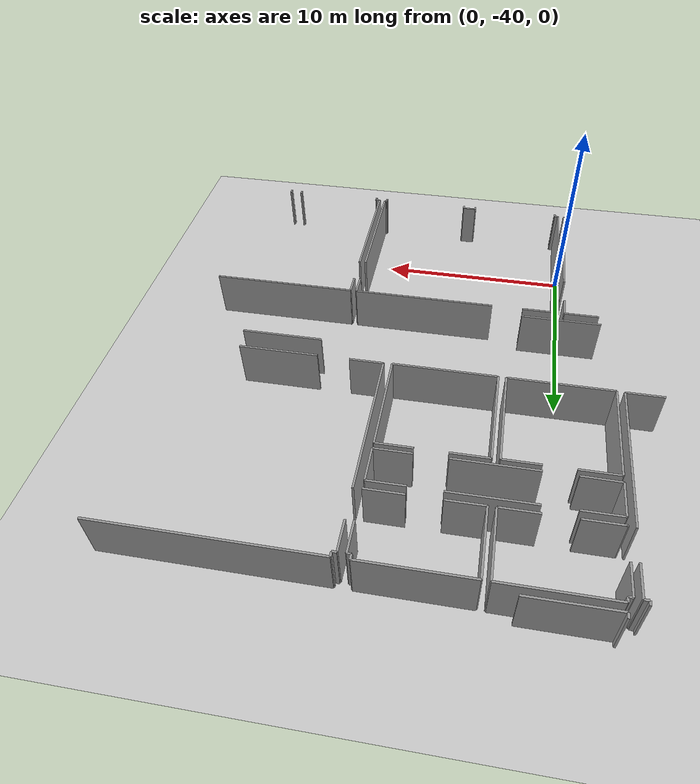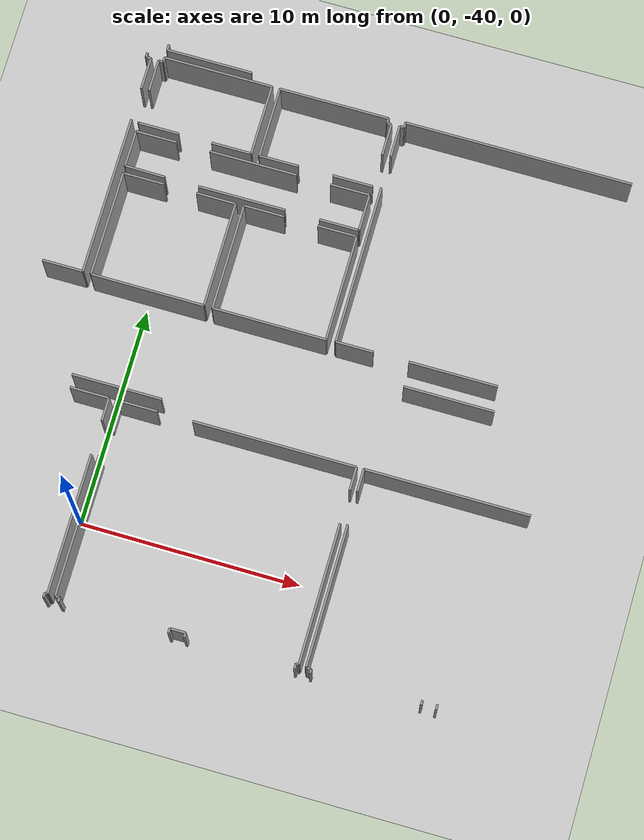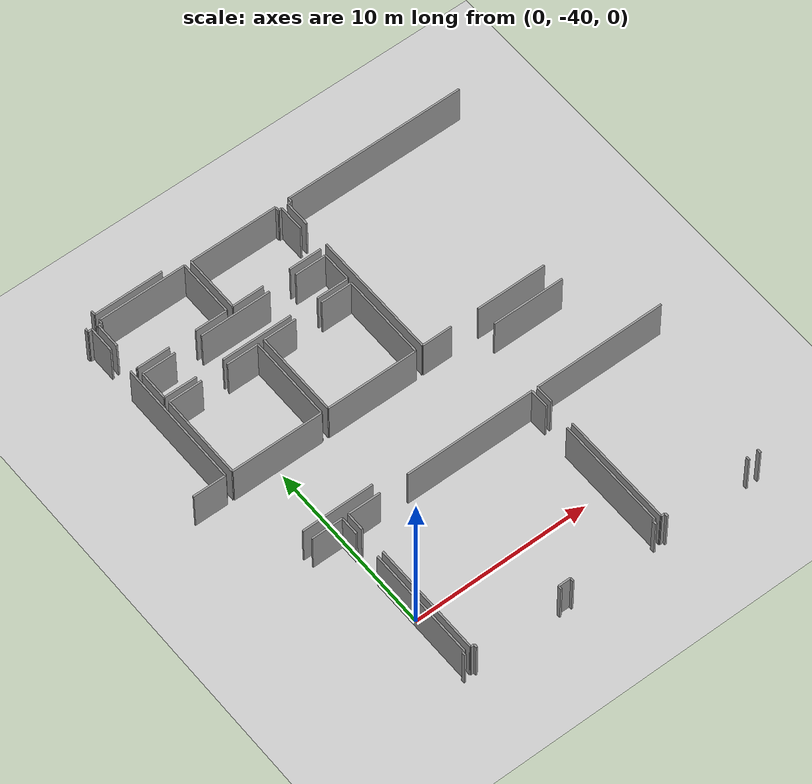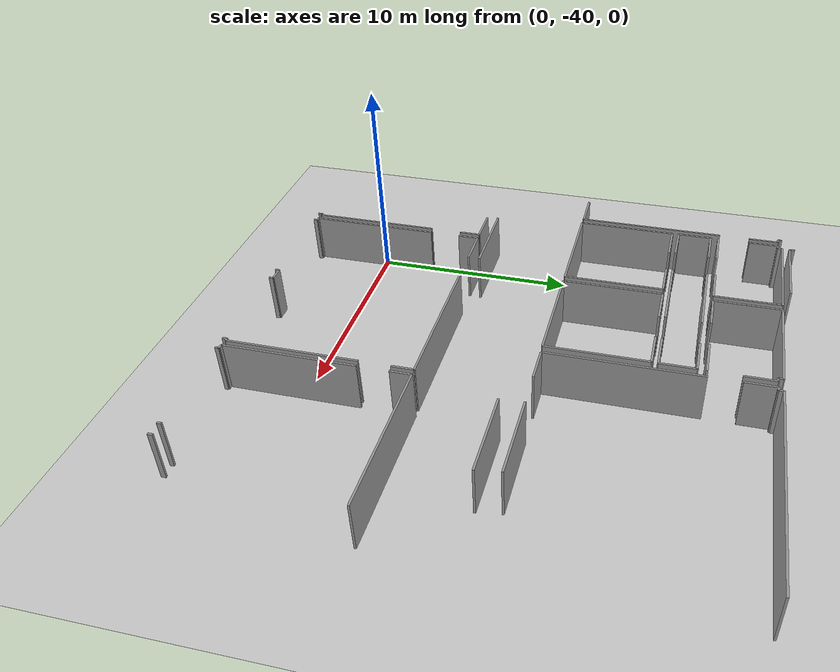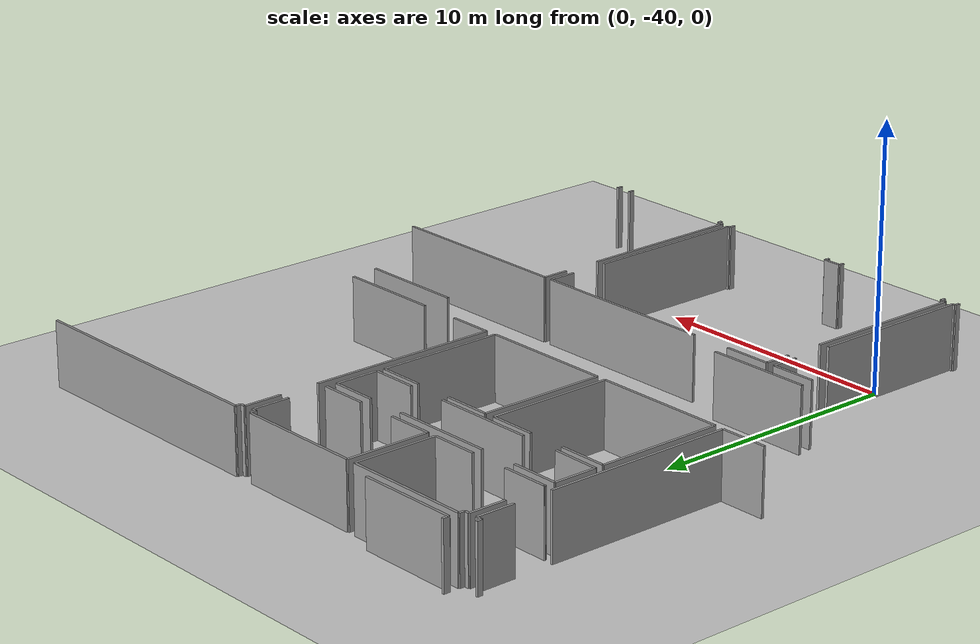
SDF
<sdf version="1.6">
 <world name="default">
  <model name="ground_plane">
   <static>1</static>
   <link name="link">
    <collision name="collision">
     <geometry><plane><normal>0 0 1</normal><size>100 100</size></plane></geometry>
     <surface><friction><ode><mu>100</mu><mu2>50</mu2></ode></friction></surface>
    </collision>
    <visual name="visual">
     <cast_shadows>0</cast_shadows>
     <geometry><plane><normal>0 0 1</normal><size>100 100</size></plane></geometry>
     <material>
      <script><uri>file://media/materials/scripts/gazebo.material</uri><name>Gazebo/Grey</name></script>
     </material>
    </visual>
   </link>
  </model>
  <model name="50015847">
   <static>1</static>
   <link name="Wall_1016">
    <collision name="Wall_1016_Collision">
     <geometry><box><size>3.9477296995 0.1 2.5</size></box></geometry>
     <pose>1.97386484975 0 1.25 0 0 0</pose>
    </collision>
    <visual name="Wall_1016_Visual">
     <pose>1.97386484975 0 1.25 0 0 0</pose>
     <geometry><box><size>3.9477296995 0.1 2.5</size></box></geometry>
     <material>
      <script><uri>file://media/materials/scripts/gazebo.material</uri><name>Gazebo/Grey</name></script>
      <ambient>1 1 1 1</ambient>
     </material>
    </visual>
    <pose>133.934509585 -62.5458890527 0 0 0 3.14159265359</pose>
   </link>
   <link name="Wall_1017">
    <collision name="Wall_1017_Collision">
     <geometry><box><size>0.25753800783 0.1 2.5</size></box></geometry>
     <pose>0.128769003915 0 1.25 0 0 0</pose>
    </collision>
    <visual name="Wall_1017_Visual">
     <pose>0.128769003915 0 1.25 0 0 0</pose>
     <geometry><box><size>0.25753800783 0.1 2.5</size></box></geometry>
     <material>
      <script><uri>file://media/materials/scripts/gazebo.material</uri><name>Gazebo/Grey</name></script>
      <ambient>1 1 1 1</ambient>
     </material>
    </visual>
    <pose>129.986779885 -62.5458890527 0 0 0 1.57079632679</pose>
   </link>
   <link name="Wall_1369">
    <collision name="Wall_1369_Collision">
     <geometry><box><size>1.77225809732 0.1 2.5</size></box></geometry>
     <pose>0.88612904866 0 1.25 0 0 0</pose>
    </collision>
    <visual name="Wall_1369_Visual">
     <pose>0.88612904866 0 1.25 0 0 0</pose>
     <geometry><box><size>1.77225809732 0.1 2.5</size></box></geometry>
     <material>
      <script><uri>file://media/materials/scripts/gazebo.material</uri><name>Gazebo/Grey</name></script>
      <ambient>1 1 1 1</ambient>
     </material>
    </visual>
    <pose>130.425586007 -78.6502771139 0 0 0 0.0</pose>
   </link>
   <link name="Wall_1370">
    <collision name="Wall_1370_Collision">
     <geometry><box><size>1.05506686327 0.1 2.5</size></box></geometry>
     <pose>0.527533431637 0 1.25 0 0 0</pose>
    </collision>
    <visual name="Wall_1370_Visual">
     <pose>0.527533431637 0 1.25 0 0 0</pose>
     <geometry><box><size>1.05506686327 0.1 2.5</size></box></geometry>
     <material>
      <script><uri>file://media/materials/scripts/gazebo.material</uri><name>Gazebo/Grey</name></script>
      <ambient>1 1 1 1</ambient>
     </material>
    </visual>
    <pose>132.197844104 -78.6502771139 0 0 0 -1.57079632679</pose>
   </link>
   <link name="Wall_1371">
    <collision name="Wall_1371_Collision">
     <geometry><box><size>6.36624802969 0.1 2.5</size></box></geometry>
     <pose>3.18312401485 0 1.25 0 0 0</pose>
    </collision>
    <visual name="Wall_1371_Visual">
     <pose>3.18312401485 0 1.25 0 0 0</pose>
     <geometry><box><size>6.36624802969 0.1 2.5</size></box></geometry>
     <material>
      <script><uri>file://media/materials/scripts/gazebo.material</uri><name>Gazebo/Grey</name></script>
      <ambient>1 1 1 1</ambient>
     </material>
    </visual>
    <pose>132.197844104 -81.2643006051 0 0 0 -1.57079632679</pose>
   </link>
   <link name="Wall_1372">
    <collision name="Wall_1372_Collision">
     <geometry><box><size>0.119235267199 0.1 2.5</size></box></geometry>
     <pose>0.0596176335994 0 1.25 0 0 0</pose>
    </collision>
    <visual name="Wall_1372_Visual">
     <pose>0.0596176335994 0 1.25 0 0 0</pose>
     <geometry><box><size>0.119235267199 0.1 2.5</size></box></geometry>
     <material>
      <script><uri>file://media/materials/scripts/gazebo.material</uri><name>Gazebo/Grey</name></script>
      <ambient>1 1 1 1</ambient>
     </material>
    </visual>
    <pose>132.197844104 -87.6305486348 0 0 0 3.14159265359</pose>
   </link>
   <link name="Wall_1373">
    <collision name="Wall_1373_Collision">
     <geometry><box><size>0.202369451365 0.1 2.5</size></box></geometry>
     <pose>0.101184725683 0 1.25 0 0 0</pose>
    </collision>
    <visual name="Wall_1373_Visual">
     <pose>0.101184725683 0 1.25 0 0 0</pose>
     <geometry><box><size>0.202369451365 0.1 2.5</size></box></geometry>
     <material>
      <script><uri>file://media/materials/scripts/gazebo.material</uri><name>Gazebo/Grey</name></script>
      <ambient>1 1 1 1</ambient>
     </material>
    </visual>
    <pose>132.078608837 -87.6305486348 0 0 0 -1.57079632679</pose>
   </link>
   <link name="Wall_1380">
    <collision name="Wall_1380_Collision">
     <geometry><box><size>6.40006101591 0.1 2.5</size></box></geometry>
     <pose>3.20003050796 0 1.25 0 0 0</pose>
    </collision>
    <visual name="Wall_1380_Visual">
     <pose>3.20003050796 0 1.25 0 0 0</pose>
     <geometry><box><size>6.40006101591 0.1 2.5</size></box></geometry>
     <material>
      <script><uri>file://media/materials/scripts/gazebo.material</uri><name>Gazebo/Grey</name></script>
      <ambient>1 1 1 1</ambient>
     </material>
    </visual>
    <pose>132.541312859 -87.6140234911 0 0 0 1.57079632679</pose>
   </link>
   <link name="Wall_1381">
    <collision name="Wall_1381_Collision">
     <geometry><box><size>1.04184674836 0.1 2.5</size></box></geometry>
     <pose>0.52092337418 0 1.25 0 0 0</pose>
    </collision>
    <visual name="Wall_1381_Visual">
     <pose>0.52092337418 0 1.25 0 0 0</pose>
     <geometry><box><size>1.04184674836 0.1 2.5</size></box></geometry>
     <material>
      <script><uri>file://media/materials/scripts/gazebo.material</uri><name>Gazebo/Grey</name></script>
      <ambient>1 1 1 1</ambient>
     </material>
    </visual>
    <pose>132.541312859 -79.6872934357 0 0 0 1.57079632679</pose>
   </link>
   <link name="Wall_1382">
    <collision name="Wall_1382_Collision">
     <geometry><box><size>1.85081608786 0.1 2.5</size></box></geometry>
     <pose>0.925408043931 0 1.25 0 0 0</pose>
    </collision>
    <visual name="Wall_1382_Visual">
     <pose>0.925408043931 0 1.25 0 0 0</pose>
     <geometry><box><size>1.85081608786 0.1 2.5</size></box></geometry>
     <material>
      <script><uri>file://media/materials/scripts/gazebo.material</uri><name>Gazebo/Grey</name></script>
      <ambient>1 1 1 1</ambient>
     </material>
    </visual>
    <pose>132.541312859 -78.6454466873 0 0 0 0.0</pose>
   </link>
   <link name="Wall_1383">
    <collision name="Wall_1383_Collision">
     <geometry><box><size>7.39767122591 0.1 2.5</size></box></geometry>
     <pose>3.69883561296 0 1.25 0 0 0</pose>
    </collision>
    <visual name="Wall_1383_Visual">
     <pose>3.69883561296 0 1.25 0 0 0</pose>
     <geometry><box><size>7.39767122591 0.1 2.5</size></box></geometry>
     <material>
      <script><uri>file://media/materials/scripts/gazebo.material</uri><name>Gazebo/Grey</name></script>
      <ambient>1 1 1 1</ambient>
     </material>
    </visual>
    <pose>136.007271063 -78.6454466873 0 0 0 0.0</pose>
   </link>
   <link name="Wall_1384">
    <collision name="Wall_1384_Collision">
     <geometry><box><size>1.07032084202 0.1 2.5</size></box></geometry>
     <pose>0.53516042101 0 1.25 0 0 0</pose>
    </collision>
    <visual name="Wall_1384_Visual">
     <pose>0.53516042101 0 1.25 0 0 0</pose>
     <geometry><box><size>1.07032084202 0.1 2.5</size></box></geometry>
     <material>
      <script><uri>file://media/materials/scripts/gazebo.material</uri><name>Gazebo/Grey</name></script>
      <ambient>1 1 1 1</ambient>
     </material>
    </visual>
    <pose>143.404942289 -78.6454466873 0 0 0 -1.57079632679</pose>
   </link>
   <link name="Wall_1385">
    <collision name="Wall_1385_Collision">
     <geometry><box><size>6.36421416586 0.1 2.5</size></box></geometry>
     <pose>3.18210708293 0 1.25 0 0 0</pose>
    </collision>
    <visual name="Wall_1385_Visual">
     <pose>3.18210708293 0 1.25 0 0 0</pose>
     <geometry><box><size>6.36421416586 0.1 2.5</size></box></geometry>
     <material>
      <script><uri>file://media/materials/scripts/gazebo.material</uri><name>Gazebo/Grey</name></script>
      <ambient>1 1 1 1</ambient>
     </material>
    </visual>
    <pose>143.404942289 -81.2376061423 0 0 0 -1.57079632679</pose>
   </link>
   <link name="Wall_1386">
    <collision name="Wall_1386_Collision">
     <geometry><box><size>0.125845324656 0.1 2.5</size></box></geometry>
     <pose>0.0629226623278 0 1.25 0 0 0</pose>
    </collision>
    <visual name="Wall_1386_Visual">
     <pose>0.0629226623278 0 1.25 0 0 0</pose>
     <geometry><box><size>0.125845324656 0.1 2.5</size></box></geometry>
     <material>
      <script><uri>file://media/materials/scripts/gazebo.material</uri><name>Gazebo/Grey</name></script>
      <ambient>1 1 1 1</ambient>
     </material>
    </visual>
    <pose>143.404942289 -87.6018203081 0 0 0 3.14159265359</pose>
   </link>
   <link name="Wall_1387">
    <collision name="Wall_1387_Collision">
     <geometry><box><size>0.23491127269 0.1 2.5</size></box></geometry>
     <pose>0.117455636345 0 1.25 0 0 0</pose>
    </collision>
    <visual name="Wall_1387_Visual">
     <pose>0.117455636345 0 1.25 0 0 0</pose>
     <geometry><box><size>0.23491127269 0.1 2.5</size></box></geometry>
     <material>
      <script><uri>file://media/materials/scripts/gazebo.material</uri><name>Gazebo/Grey</name></script>
      <ambient>1 1 1 1</ambient>
     </material>
    </visual>
    <pose>143.279096964 -87.6018203081 0 0 0 -1.57079632679</pose>
   </link>
   <link name="Wall_1388">
    <collision name="Wall_1388_Collision">
     <geometry><box><size>0.207454110947 0.1 2.5</size></box></geometry>
     <pose>0.103727055474 0 1.25 0 0 0</pose>
    </collision>
    <visual name="Wall_1388_Visual">
     <pose>0.103727055474 0 1.25 0 0 0</pose>
     <geometry><box><size>0.207454110947 0.1 2.5</size></box></geometry>
     <material>
      <script><uri>file://media/materials/scripts/gazebo.material</uri><name>Gazebo/Grey</name></script>
      <ambient>1 1 1 1</ambient>
     </material>
    </visual>
    <pose>138.373925866 -87.8367315808 0 0 0 1.57079632679</pose>
   </link>
   <link name="Wall_1389">
    <collision name="Wall_1389_Collision">
     <geometry><box><size>0.703208420196 0.1 2.5</size></box></geometry>
     <pose>0.351604210098 0 1.25 0 0 0</pose>
    </collision>
    <visual name="Wall_1389_Visual">
     <pose>0.351604210098 0 1.25 0 0 0</pose>
     <geometry><box><size>0.703208420196 0.1 2.5</size></box></geometry>
     <material>
      <script><uri>file://media/materials/scripts/gazebo.material</uri><name>Gazebo/Grey</name></script>
      <ambient>1 1 1 1</ambient>
     </material>
    </visual>
    <pose>138.373925866 -87.6292774699 0 0 0 3.14159265359</pose>
   </link>
   <link name="Wall_1390">
    <collision name="Wall_1390_Collision">
     <geometry><box><size>0.208979508822 0.1 2.5</size></box></geometry>
     <pose>0.104489754411 0 1.25 0 0 0</pose>
    </collision>
    <visual name="Wall_1390_Visual">
     <pose>0.104489754411 0 1.25 0 0 0</pose>
     <geometry><box><size>0.208979508822 0.1 2.5</size></box></geometry>
     <material>
      <script><uri>file://media/materials/scripts/gazebo.material</uri><name>Gazebo/Grey</name></script>
      <ambient>1 1 1 1</ambient>
     </material>
    </visual>
    <pose>137.670717445 -87.6292774699 0 0 0 -1.57079632679</pose>
   </link>
   <link name="Wall_1391">
    <collision name="Wall_1391_Collision">
     <geometry><box><size>0.199572888595 0.1 2.5</size></box></geometry>
     <pose>0.0997864442975 0 1.25 0 0 0</pose>
    </collision>
    <visual name="Wall_1391_Visual">
     <pose>0.0997864442975 0 1.25 0 0 0</pose>
     <geometry><box><size>0.199572888595 0.1 2.5</size></box></geometry>
     <material>
      <script><uri>file://media/materials/scripts/gazebo.material</uri><name>Gazebo/Grey</name></script>
      <ambient>1 1 1 1</ambient>
     </material>
    </visual>
    <pose>132.743173845 -87.8382569787 0 0 0 1.57079632679</pose>
   </link>
   <link name="Wall_1392">
    <collision name="Wall_1392_Collision">
     <geometry><box><size>0.204403315198 0.1 2.5</size></box></geometry>
     <pose>0.102201657599 0 1.25 0 0 0</pose>
    </collision>
    <visual name="Wall_1392_Visual">
     <pose>0.102201657599 0 1.25 0 0 0</pose>
     <geometry><box><size>0.204403315198 0.1 2.5</size></box></geometry>
     <material>
      <script><uri>file://media/materials/scripts/gazebo.material</uri><name>Gazebo/Grey</name></script>
      <ambient>1 1 1 1</ambient>
     </material>
    </visual>
    <pose>132.743173845 -87.6386840901 0 0 0 3.14159265359</pose>
   </link>
   <link name="Wall_1393">
    <collision name="Wall_1393_Collision">
     <geometry><box><size>0.0247913005401 0.1 2.5</size></box></geometry>
     <pose>0.01239565027 0 1.25 0 0 0</pose>
    </collision>
    <visual name="Wall_1393_Visual">
     <pose>0.01239565027 0 1.25 0 0 0</pose>
     <geometry><box><size>0.0247913005401 0.1 2.5</size></box></geometry>
     <material>
      <script><uri>file://media/materials/scripts/gazebo.material</uri><name>Gazebo/Grey</name></script>
      <ambient>1 1 1 1</ambient>
     </material>
    </visual>
    <pose>132.538770529 -87.6386840901 0 0 0 1.46806645938</pose>
   </link>
   <link name="Wall_1394">
    <collision name="Wall_1394_Collision">
     <geometry><box><size>6.42116235318 0.1 2.5</size></box></geometry>
     <pose>3.21058117659 0 1.25 0 0 0</pose>
    </collision>
    <visual name="Wall_1394_Visual">
     <pose>3.21058117659 0 1.25 0 0 0</pose>
     <geometry><box><size>6.42116235318 0.1 2.5</size></box></geometry>
     <material>
      <script><uri>file://media/materials/scripts/gazebo.material</uri><name>Gazebo/Grey</name></script>
      <ambient>1 1 1 1</ambient>
     </material>
    </visual>
    <pose>143.735699395 -87.6147861901 0 0 0 1.57079632679</pose>
   </link>
   <link name="Wall_1395">
    <collision name="Wall_1395_Collision">
     <geometry><box><size>1.03066049728 0.1 2.5</size></box></geometry>
     <pose>0.51533024864 0 1.25 0 0 0</pose>
    </collision>
    <visual name="Wall_1395_Visual">
     <pose>0.51533024864 0 1.25 0 0 0</pose>
     <geometry><box><size>1.03066049728 0.1 2.5</size></box></geometry>
     <material>
      <script><uri>file://media/materials/scripts/gazebo.material</uri><name>Gazebo/Grey</name></script>
      <ambient>1 1 1 1</ambient>
     </material>
    </visual>
    <pose>143.735699395 -79.6748360197 0 0 0 1.57079632679</pose>
   </link>
   <link name="Wall_1396">
    <collision name="Wall_1396_Collision">
     <geometry><box><size>7.49377129201 0.1 2.5</size></box></geometry>
     <pose>3.74688564601 0 1.25 0 0 0</pose>
    </collision>
    <visual name="Wall_1396_Visual">
     <pose>3.74688564601 0 1.25 0 0 0</pose>
     <geometry><box><size>7.49377129201 0.1 2.5</size></box></geometry>
     <material>
      <script><uri>file://media/materials/scripts/gazebo.material</uri><name>Gazebo/Grey</name></script>
      <ambient>1 1 1 1</ambient>
     </material>
    </visual>
    <pose>143.735699395 -78.6441755224 0 0 0 0.0</pose>
   </link>
   <link name="Wall_1400">
    <collision name="Wall_1400_Collision">
     <geometry><box><size>0.237453602481 0.1 2.5</size></box></geometry>
     <pose>0.118726801241 0 1.25 0 0 0</pose>
    </collision>
    <visual name="Wall_1400_Visual">
     <pose>0.118726801241 0 1.25 0 0 0</pose>
     <geometry><box><size>0.237453602481 0.1 2.5</size></box></geometry>
     <material>
      <script><uri>file://media/materials/scripts/gazebo.material</uri><name>Gazebo/Grey</name></script>
      <ambient>1 1 1 1</ambient>
     </material>
    </visual>
    <pose>149.54085524 -87.8619006458 0 0 0 1.57079632679</pose>
   </link>
   <link name="Wall_1402">
    <collision name="Wall_1402_Collision">
     <geometry><box><size>0.213809935425 0.1 2.5</size></box></geometry>
     <pose>0.106904967712 0 1.25 0 0 0</pose>
    </collision>
    <visual name="Wall_1402_Visual">
     <pose>0.106904967712 0 1.25 0 0 0</pose>
     <geometry><box><size>0.213809935425 0.1 2.5</size></box></geometry>
     <material>
      <script><uri>file://media/materials/scripts/gazebo.material</uri><name>Gazebo/Grey</name></script>
      <ambient>1 1 1 1</ambient>
     </material>
    </visual>
    <pose>148.88035796 -87.6244470433 0 0 0 -1.57079632679</pose>
   </link>
   <link name="Wall_1403">
    <collision name="Wall_1403_Collision">
     <geometry><box><size>0.189912035389 0.1 2.5</size></box></geometry>
     <pose>0.0949560176946 0 1.25 0 0 0</pose>
    </collision>
    <visual name="Wall_1403_Visual">
     <pose>0.0949560176946 0 1.25 0 0 0</pose>
     <geometry><box><size>0.189912035389 0.1 2.5</size></box></geometry>
     <material>
      <script><uri>file://media/materials/scripts/gazebo.material</uri><name>Gazebo/Grey</name></script>
      <ambient>1 1 1 1</ambient>
     </material>
    </visual>
    <pose>143.962220979 -87.8382569787 0 0 0 1.57079632679</pose>
   </link>
   <link name="Wall_1404">
    <collision name="Wall_1404_Collision">
     <geometry><box><size>0.223470788631 0.1 2.5</size></box></geometry>
     <pose>0.111735394315 0 1.25 0 0 0</pose>
    </collision>
    <visual name="Wall_1404_Visual">
     <pose>0.111735394315 0 1.25 0 0 0</pose>
     <geometry><box><size>0.223470788631 0.1 2.5</size></box></geometry>
     <material>
      <script><uri>file://media/materials/scripts/gazebo.material</uri><name>Gazebo/Grey</name></script>
      <ambient>1 1 1 1</ambient>
     </material>
    </visual>
    <pose>143.962220979 -87.6483449433 0 0 0 3.14159265359</pose>
   </link>
   <link name="Wall_1405">
    <collision name="Wall_1405_Collision">
     <geometry><box><size>0.0336971404399 0.1 2.5</size></box></geometry>
     <pose>0.0168485702199 0 1.25 0 0 0</pose>
    </collision>
    <visual name="Wall_1405_Visual">
     <pose>0.0168485702199 0 1.25 0 0 0</pose>
     <geometry><box><size>0.0336971404399 0.1 2.5</size></box></geometry>
     <material>
      <script><uri>file://media/materials/scripts/gazebo.material</uri><name>Gazebo/Grey</name></script>
      <ambient>1 1 1 1</ambient>
     </material>
    </visual>
    <pose>143.738750191 -87.6483449433 0 0 0 1.661456214</pose>
   </link>
   <link name="Wall_1583">
    <collision name="Wall_1583_Collision">
     <geometry><box><size>7.33868917476 0.1 2.5</size></box></geometry>
     <pose>3.66934458738 0 1.25 0 0 0</pose>
    </collision>
    <visual name="Wall_1583_Visual">
     <pose>3.66934458738 0 1.25 0 0 0</pose>
     <geometry><box><size>7.33868917476 0.1 2.5</size></box></geometry>
     <material>
      <script><uri>file://media/materials/scripts/gazebo.material</uri><name>Gazebo/Grey</name></script>
      <ambient>1 1 1 1</ambient>
     </material>
    </visual>
    <pose>140.990491687 -73.4748563584 0 0 0 1.57079632679</pose>
   </link>
   <link name="Wall_1584">
    <collision name="Wall_1584_Collision">
     <geometry><box><size>1.46641582346 0.1 2.5</size></box></geometry>
     <pose>0.73320791173 0 1.25 0 0 0</pose>
    </collision>
    <visual name="Wall_1584_Visual">
     <pose>0.73320791173 0 1.25 0 0 0</pose>
     <geometry><box><size>1.46641582346 0.1 2.5</size></box></geometry>
     <material>
      <script><uri>file://media/materials/scripts/gazebo.material</uri><name>Gazebo/Grey</name></script>
      <ambient>1 1 1 1</ambient>
     </material>
    </visual>
    <pose>140.990491687 -64.6153455026 0 0 0 1.57079632679</pose>
   </link>
   <link name="Wall_1585">
    <collision name="Wall_1585_Collision">
     <geometry><box><size>0.211776071592 0.1 2.5</size></box></geometry>
     <pose>0.105888035796 0 1.25 0 0 0</pose>
    </collision>
    <visual name="Wall_1585_Visual">
     <pose>0.105888035796 0 1.25 0 0 0</pose>
     <geometry><box><size>0.211776071592 0.1 2.5</size></box></geometry>
     <material>
      <script><uri>file://media/materials/scripts/gazebo.material</uri><name>Gazebo/Grey</name></script>
      <ambient>1 1 1 1</ambient>
     </material>
    </visual>
    <pose>140.990491687 -63.1489296792 0 0 0 0.0</pose>
   </link>
   <link name="Wall_1586">
    <collision name="Wall_1586_Collision">
     <geometry><box><size>0.229826613108 0.1 2.5</size></box></geometry>
     <pose>0.114913306554 0 1.25 0 0 0</pose>
    </collision>
    <visual name="Wall_1586_Visual">
     <pose>0.114913306554 0 1.25 0 0 0</pose>
     <geometry><box><size>0.229826613108 0.1 2.5</size></box></geometry>
     <material>
      <script><uri>file://media/materials/scripts/gazebo.material</uri><name>Gazebo/Grey</name></script>
      <ambient>1 1 1 1</ambient>
     </material>
    </visual>
    <pose>141.202267758 -63.1489296792 0 0 0 1.57079632679</pose>
   </link>
   <link name="Wall_1587">
    <collision name="Wall_1587_Collision">
     <geometry><box><size>10.4327045304 0.1 2.5</size></box></geometry>
     <pose>5.21635226522 0 1.25 0 0 0</pose>
    </collision>
    <visual name="Wall_1587_Visual">
     <pose>5.21635226522 0 1.25 0 0 0</pose>
     <geometry><box><size>10.4327045304 0.1 2.5</size></box></geometry>
     <material>
      <script><uri>file://media/materials/scripts/gazebo.material</uri><name>Gazebo/Grey</name></script>
      <ambient>1 1 1 1</ambient>
     </material>
    </visual>
    <pose>141.202267758 -62.919103066 0 0 0 0.0</pose>
   </link>
   <link name="Wall_1592">
    <collision name="Wall_1592_Collision">
     <geometry><box><size>4.02247419535 0.1 2.5</size></box></geometry>
     <pose>2.01123709768 0 1.25 0 0 0</pose>
    </collision>
    <visual name="Wall_1592_Visual">
     <pose>2.01123709768 0 1.25 0 0 0</pose>
     <geometry><box><size>4.02247419535 0.1 2.5</size></box></geometry>
     <material>
      <script><uri>file://media/materials/scripts/gazebo.material</uri><name>Gazebo/Grey</name></script>
      <ambient>1 1 1 1</ambient>
     </material>
    </visual>
    <pose>148.337316317 -73.4878222403 0 0 0 3.14159265359</pose>
   </link>
   <link name="Wall_1593">
    <collision name="Wall_1593_Collision">
     <geometry><box><size>1.70488635786 0.1 2.5</size></box></geometry>
     <pose>0.852443178929 0 1.25 0 0 0</pose>
    </collision>
    <visual name="Wall_1593_Visual">
     <pose>0.852443178929 0 1.25 0 0 0</pose>
     <geometry><box><size>1.70488635786 0.1 2.5</size></box></geometry>
     <material>
      <script><uri>file://media/materials/scripts/gazebo.material</uri><name>Gazebo/Grey</name></script>
      <ambient>1 1 1 1</ambient>
     </material>
    </visual>
    <pose>142.705293131 -73.4878222403 0 0 0 3.14159265359</pose>
   </link>
   <link name="Wall_1594">
    <collision name="Wall_1594_Collision">
     <geometry><box><size>0.0163224700455 0.1 2.5</size></box></geometry>
     <pose>0.00816123502277 0 1.25 0 0 0</pose>
    </collision>
    <visual name="Wall_1594_Visual">
     <pose>0.00816123502277 0 1.25 0 0 0</pose>
     <geometry><box><size>0.0163224700455 0.1 2.5</size></box></geometry>
     <material>
      <script><uri>file://media/materials/scripts/gazebo.material</uri><name>Gazebo/Grey</name></script>
      <ambient>1 1 1 1</ambient>
     </material>
    </visual>
    <pose>141.000406773 -73.4878222403 0 0 0 2.2236429579</pose>
   </link>
   <link name="Wall_1595">
    <collision name="Wall_1595_Collision">
     <geometry><box><size>3.26511415061 0.1 2.5</size></box></geometry>
     <pose>1.6325570753 0 1.25 0 0 0</pose>
    </collision>
    <visual name="Wall_1595_Visual">
     <pose>1.6325570753 0 1.25 0 0 0</pose>
     <geometry><box><size>3.26511415061 0.1 2.5</size></box></geometry>
     <material>
      <script><uri>file://media/materials/scripts/gazebo.material</uri><name>Gazebo/Grey</name></script>
      <ambient>1 1 1 1</ambient>
     </material>
    </visual>
    <pose>135.366349723 -66.1969288656 0 0 0 1.57079632679</pose>
   </link>
   <link name="Wall_1596">
    <collision name="Wall_1596_Collision">
     <geometry><box><size>5.05059236284 0.1 2.5</size></box></geometry>
     <pose>2.52529618142 0 1.25 0 0 0</pose>
    </collision>
    <visual name="Wall_1596_Visual">
     <pose>2.52529618142 0 1.25 0 0 0</pose>
     <geometry><box><size>5.05059236284 0.1 2.5</size></box></geometry>
     <material>
      <script><uri>file://media/materials/scripts/gazebo.material</uri><name>Gazebo/Grey</name></script>
      <ambient>1 1 1 1</ambient>
     </material>
    </visual>
    <pose>135.366349723 -62.931814715 0 0 0 0.0</pose>
   </link>
   <link name="Wall_1597">
    <collision name="Wall_1597_Collision">
     <geometry><box><size>0.237453602481 0.1 2.5</size></box></geometry>
     <pose>0.118726801241 0 1.25 0 0 0</pose>
    </collision>
    <visual name="Wall_1597_Visual">
     <pose>0.118726801241 0 1.25 0 0 0</pose>
     <geometry><box><size>0.237453602481 0.1 2.5</size></box></geometry>
     <material>
      <script><uri>file://media/materials/scripts/gazebo.material</uri><name>Gazebo/Grey</name></script>
      <ambient>1 1 1 1</ambient>
     </material>
    </visual>
    <pose>140.416942086 -62.931814715 0 0 0 -1.57079632679</pose>
   </link>
   <link name="Wall_1598">
    <collision name="Wall_1598_Collision">
     <geometry><box><size>0.191183200285 0.1 2.5</size></box></geometry>
     <pose>0.0955916001424 0 1.25 0 0 0</pose>
    </collision>
    <visual name="Wall_1598_Visual">
     <pose>0.0955916001424 0 1.25 0 0 0</pose>
     <geometry><box><size>0.191183200285 0.1 2.5</size></box></geometry>
     <material>
      <script><uri>file://media/materials/scripts/gazebo.material</uri><name>Gazebo/Grey</name></script>
      <ambient>1 1 1 1</ambient>
     </material>
    </visual>
    <pose>140.416942086 -63.1692683175 0 0 0 0.0</pose>
   </link>
   <link name="Wall_1599">
    <collision name="Wall_1599_Collision">
     <geometry><box><size>1.47938170539 0.1 2.5</size></box></geometry>
     <pose>0.739690852697 0 1.25 0 0 0</pose>
    </collision>
    <visual name="Wall_1599_Visual">
     <pose>0.739690852697 0 1.25 0 0 0</pose>
     <geometry><box><size>1.47938170539 0.1 2.5</size></box></geometry>
     <material>
      <script><uri>file://media/materials/scripts/gazebo.material</uri><name>Gazebo/Grey</name></script>
      <ambient>1 1 1 1</ambient>
     </material>
    </visual>
    <pose>140.608125286 -63.1692683175 0 0 0 -1.57079632679</pose>
   </link>
   <link name="Wall_1600">
    <collision name="Wall_1600_Collision">
     <geometry><box><size>1.85183301978 0.1 2.5</size></box></geometry>
     <pose>0.92591650989 0 1.25 0 0 0</pose>
    </collision>
    <visual name="Wall_1600_Visual">
     <pose>0.92591650989 0 1.25 0 0 0</pose>
     <geometry><box><size>1.85183301978 0.1 2.5</size></box></geometry>
     <material>
      <script><uri>file://media/materials/scripts/gazebo.material</uri><name>Gazebo/Grey</name></script>
      <ambient>1 1 1 1</ambient>
     </material>
    </visual>
    <pose>140.608125286 -66.1895561092 0 0 0 3.14159265359</pose>
   </link>
   <link name="Wall_1601">
    <collision name="Wall_1601_Collision">
     <geometry><box><size>1.80735728635 0.1 2.5</size></box></geometry>
     <pose>0.903678643175 0 1.25 0 0 0</pose>
    </collision>
    <visual name="Wall_1601_Visual">
     <pose>0.903678643175 0 1.25 0 0 0</pose>
     <geometry><box><size>1.80735728635 0.1 2.5</size></box></geometry>
     <material>
      <script><uri>file://media/materials/scripts/gazebo.material</uri><name>Gazebo/Grey</name></script>
      <ambient>1 1 1 1</ambient>
     </material>
    </visual>
    <pose>137.173691971 -66.1895561092 0 0 0 -3.13751334016</pose>
   </link>
   <link name="Wall_1602">
    <collision name="Wall_1602_Collision">
     <geometry><box><size>1.67717496314 0.1 2.5</size></box></geometry>
     <pose>0.838587481568 0 1.25 0 0 0</pose>
    </collision>
    <visual name="Wall_1602_Visual">
     <pose>0.838587481568 0 1.25 0 0 0</pose>
     <geometry><box><size>1.67717496314 0.1 2.5</size></box></geometry>
     <material>
      <script><uri>file://media/materials/scripts/gazebo.material</uri><name>Gazebo/Grey</name></script>
      <ambient>1 1 1 1</ambient>
     </material>
    </visual>
    <pose>129.765851426 -68.284435857 0 0 0 1.57079632679</pose>
   </link>
   <link name="Wall_1603">
    <collision name="Wall_1603_Collision">
     <geometry><box><size>1.88412060813 0.1 2.5</size></box></geometry>
     <pose>0.942060304063 0 1.25 0 0 0</pose>
    </collision>
    <visual name="Wall_1603_Visual">
     <pose>0.942060304063 0 1.25 0 0 0</pose>
     <geometry><box><size>1.88412060813 0.1 2.5</size></box></geometry>
     <material>
      <script><uri>file://media/materials/scripts/gazebo.material</uri><name>Gazebo/Grey</name></script>
      <ambient>1 1 1 1</ambient>
     </material>
    </visual>
    <pose>129.765851426 -66.6072608939 0 0 0 0.0</pose>
   </link>
   <link name="Wall_1604">
    <collision name="Wall_1604_Collision">
     <geometry><box><size>4.02755885493 0.1 2.5</size></box></geometry>
     <pose>2.01377942747 0 1.25 0 0 0</pose>
    </collision>
    <visual name="Wall_1604_Visual">
     <pose>2.01377942747 0 1.25 0 0 0</pose>
     <geometry><box><size>4.02755885493 0.1 2.5</size></box></geometry>
     <material>
      <script><uri>file://media/materials/scripts/gazebo.material</uri><name>Gazebo/Grey</name></script>
      <ambient>1 1 1 1</ambient>
     </material>
    </visual>
    <pose>133.191386587 -66.6072608939 0 0 0 0.0</pose>
   </link>
   <link name="Wall_1605">
    <collision name="Wall_1605_Collision">
     <geometry><box><size>1.79539329842 0.1 2.5</size></box></geometry>
     <pose>0.897696649209 0 1.25 0 0 0</pose>
    </collision>
    <visual name="Wall_1605_Visual">
     <pose>0.897696649209 0 1.25 0 0 0</pose>
     <geometry><box><size>1.79539329842 0.1 2.5</size></box></geometry>
     <material>
      <script><uri>file://media/materials/scripts/gazebo.material</uri><name>Gazebo/Grey</name></script>
      <ambient>1 1 1 1</ambient>
     </material>
    </visual>
    <pose>138.7796817 -66.6072608939 0 0 0 0.0</pose>
   </link>
   <link name="Wall_1606">
    <collision name="Wall_1606_Collision">
     <geometry><box><size>1.70641175573 0.1 2.5</size></box></geometry>
     <pose>0.853205877866 0 1.25 0 0 0</pose>
    </collision>
    <visual name="Wall_1606_Visual">
     <pose>0.853205877866 0 1.25 0 0 0</pose>
     <geometry><box><size>1.70641175573 0.1 2.5</size></box></geometry>
     <material>
      <script><uri>file://media/materials/scripts/gazebo.material</uri><name>Gazebo/Grey</name></script>
      <ambient>1 1 1 1</ambient>
     </material>
    </visual>
    <pose>140.575074999 -66.6072608939 0 0 0 -1.57079632679</pose>
   </link>
   <link name="Wall_1607">
    <collision name="Wall_1607_Collision">
     <geometry><box><size>1.81522347079 0.1 2.5</size></box></geometry>
     <pose>0.907611735394 0 1.25 0 0 0</pose>
    </collision>
    <visual name="Wall_1607_Visual">
     <pose>0.907611735394 0 1.25 0 0 0</pose>
     <geometry><box><size>1.81522347079 0.1 2.5</size></box></geometry>
     <material>
      <script><uri>file://media/materials/scripts/gazebo.material</uri><name>Gazebo/Grey</name></script>
      <ambient>1 1 1 1</ambient>
     </material>
    </visual>
    <pose>140.575074999 -68.3136726496 0 0 0 3.14159265359</pose>
   </link>
   <link name="Wall_1608">
    <collision name="Wall_1608_Collision">
     <geometry><box><size>4.00645751767 0.1 2.5</size></box></geometry>
     <pose>2.00322875883 0 1.25 0 0 0</pose>
    </collision>
    <visual name="Wall_1608_Visual">
     <pose>2.00322875883 0 1.25 0 0 0</pose>
     <geometry><box><size>4.00645751767 0.1 2.5</size></box></geometry>
     <material>
      <script><uri>file://media/materials/scripts/gazebo.material</uri><name>Gazebo/Grey</name></script>
      <ambient>1 1 1 1</ambient>
     </material>
    </visual>
    <pose>137.176488534 -68.3136726496 0 0 0 3.14159265359</pose>
   </link>
   <link name="Wall_1609">
    <collision name="Wall_1609_Collision">
     <geometry><box><size>1.85460581449 0.1 2.5</size></box></geometry>
     <pose>0.927302907244 0 1.25 0 0 0</pose>
    </collision>
    <visual name="Wall_1609_Visual">
     <pose>0.927302907244 0 1.25 0 0 0</pose>
     <geometry><box><size>1.85460581449 0.1 2.5</size></box></geometry>
     <material>
      <script><uri>file://media/materials/scripts/gazebo.material</uri><name>Gazebo/Grey</name></script>
      <ambient>1 1 1 1</ambient>
     </material>
    </visual>
    <pose>131.620226776 -68.3136726496 0 0 0 3.12582757646</pose>
   </link>
   <link name="Wall_1610">
    <collision name="Wall_1610_Collision">
     <geometry><box><size>4.86042609447 0.1 2.5</size></box></geometry>
     <pose>2.43021304724 0 1.25 0 0 0</pose>
    </collision>
    <visual name="Wall_1610_Visual">
     <pose>2.43021304724 0 1.25 0 0 0</pose>
     <geometry><box><size>4.86042609447 0.1 2.5</size></box></geometry>
     <material>
      <script><uri>file://media/materials/scripts/gazebo.material</uri><name>Gazebo/Grey</name></script>
      <ambient>1 1 1 1</ambient>
     </material>
    </visual>
    <pose>129.784664667 -73.4941780648 0 0 0 1.57079632679</pose>
   </link>
   <link name="Wall_1611">
    <collision name="Wall_1611_Collision">
     <geometry><box><size>1.90369654752 0.1 2.5</size></box></geometry>
     <pose>0.951848273758 0 1.25 0 0 0</pose>
    </collision>
    <visual name="Wall_1611_Visual">
     <pose>0.951848273758 0 1.25 0 0 0</pose>
     <geometry><box><size>1.90369654752 0.1 2.5</size></box></geometry>
     <material>
      <script><uri>file://media/materials/scripts/gazebo.material</uri><name>Gazebo/Grey</name></script>
      <ambient>1 1 1 1</ambient>
     </material>
    </visual>
    <pose>129.784664667 -68.6337519703 0 0 0 0.0</pose>
   </link>
   <link name="Wall_1612">
    <collision name="Wall_1612_Collision">
     <geometry><box><size>1.80352875375 0.1 2.5</size></box></geometry>
     <pose>0.901764376875 0 1.25 0 0 0</pose>
    </collision>
    <visual name="Wall_1612_Visual">
     <pose>0.901764376875 0 1.25 0 0 0</pose>
     <geometry><box><size>1.80352875375 0.1 2.5</size></box></geometry>
     <material>
      <script><uri>file://media/materials/scripts/gazebo.material</uri><name>Gazebo/Grey</name></script>
      <ambient>1 1 1 1</ambient>
     </material>
    </visual>
    <pose>133.178166472 -68.6337519703 0 0 0 0.0</pose>
   </link>
   <link name="Wall_1613">
    <collision name="Wall_1613_Collision">
     <geometry><box><size>4.8711038796 0.1 2.5</size></box></geometry>
     <pose>2.4355519398 0 1.25 0 0 0</pose>
    </collision>
    <visual name="Wall_1613_Visual">
     <pose>2.4355519398 0 1.25 0 0 0</pose>
     <geometry><box><size>4.8711038796 0.1 2.5</size></box></geometry>
     <material>
      <script><uri>file://media/materials/scripts/gazebo.material</uri><name>Gazebo/Grey</name></script>
      <ambient>1 1 1 1</ambient>
     </material>
    </visual>
    <pose>134.981695226 -68.6337519703 0 0 0 -1.57079632679</pose>
   </link>
   <link name="Wall_1614">
    <collision name="Wall_1614_Collision">
     <geometry><box><size>5.19704152805 0.1 2.5</size></box></geometry>
     <pose>2.59852076402 0 1.25 0 0 0</pose>
    </collision>
    <visual name="Wall_1614_Visual">
     <pose>2.59852076402 0 1.25 0 0 0</pose>
     <geometry><box><size>5.19704152805 0.1 2.5</size></box></geometry>
     <material>
      <script><uri>file://media/materials/scripts/gazebo.material</uri><name>Gazebo/Grey</name></script>
      <ambient>1 1 1 1</ambient>
     </material>
    </visual>
    <pose>134.981695226 -73.5048558499 0 0 0 3.139538063</pose>
   </link>
   <link name="Wall_1615">
    <collision name="Wall_1615_Collision">
     <geometry><box><size>4.89652717751 0.1 2.5</size></box></geometry>
     <pose>2.44826358875 0 1.25 0 0 0</pose>
    </collision>
    <visual name="Wall_1615_Visual">
     <pose>2.44826358875 0 1.25 0 0 0</pose>
     <geometry><box><size>4.89652717751 0.1 2.5</size></box></geometry>
     <material>
      <script><uri>file://media/materials/scripts/gazebo.material</uri><name>Gazebo/Grey</name></script>
      <ambient>1 1 1 1</ambient>
     </material>
    </visual>
    <pose>135.366349723 -73.5086693446 0 0 0 1.57079632679</pose>
   </link>
   <link name="Wall_1616">
    <collision name="Wall_1616_Collision">
     <geometry><box><size>1.86505313469 0.1 2.5</size></box></geometry>
     <pose>0.932526567346 0 1.25 0 0 0</pose>
    </collision>
    <visual name="Wall_1616_Visual">
     <pose>0.932526567346 0 1.25 0 0 0</pose>
     <geometry><box><size>1.86505313469 0.1 2.5</size></box></geometry>
     <material>
      <script><uri>file://media/materials/scripts/gazebo.material</uri><name>Gazebo/Grey</name></script>
      <ambient>1 1 1 1</ambient>
     </material>
    </visual>
    <pose>135.366349723 -68.6121421671 0 0 0 0.0</pose>
   </link>
   <link name="Wall_1617">
    <collision name="Wall_1617_Collision">
     <geometry><box><size>1.78496974628 0.1 2.5</size></box></geometry>
     <pose>0.892484873138 0 1.25 0 0 0</pose>
    </collision>
    <visual name="Wall_1617_Visual">
     <pose>0.892484873138 0 1.25 0 0 0</pose>
     <geometry><box><size>1.78496974628 0.1 2.5</size></box></geometry>
     <material>
      <script><uri>file://media/materials/scripts/gazebo.material</uri><name>Gazebo/Grey</name></script>
      <ambient>1 1 1 1</ambient>
     </material>
    </visual>
    <pose>138.770783546 -68.6121421671 0 0 0 0.0</pose>
   </link>
   <link name="Wall_1618">
    <collision name="Wall_1618_Collision">
     <geometry><box><size>4.90415416688 0.1 2.5</size></box></geometry>
     <pose>2.45207708344 0 1.25 0 0 0</pose>
    </collision>
    <visual name="Wall_1618_Visual">
     <pose>2.45207708344 0 1.25 0 0 0</pose>
     <geometry><box><size>4.90415416688 0.1 2.5</size></box></geometry>
     <material>
      <script><uri>file://media/materials/scripts/gazebo.material</uri><name>Gazebo/Grey</name></script>
      <ambient>1 1 1 1</ambient>
     </material>
    </visual>
    <pose>140.555753292 -68.6121421671 0 0 0 -1.57079632679</pose>
   </link>
   <link name="Wall_1619">
    <collision name="Wall_1619_Collision">
     <geometry><box><size>5.18940917421 0.1 2.5</size></box></geometry>
     <pose>2.59470458711 0 1.25 0 0 0</pose>
    </collision>
    <visual name="Wall_1619_Visual">
     <pose>2.59470458711 0 1.25 0 0 0</pose>
     <geometry><box><size>5.18940917421 0.1 2.5</size></box></geometry>
     <material>
      <script><uri>file://media/materials/scripts/gazebo.material</uri><name>Gazebo/Grey</name></script>
      <ambient>1 1 1 1</ambient>
     </material>
    </visual>
    <pose>140.555753292 -73.516296334 0 0 0 3.14012293096</pose>
   </link>
   <link name="Wall_1620">
    <collision name="Wall_1620_Collision">
     <geometry><box><size>5.01347434789 0.1 2.5</size></box></geometry>
     <pose>2.50673717395 0 1.25 0 0 0</pose>
    </collision>
    <visual name="Wall_1620_Visual">
     <pose>2.50673717395 0 1.25 0 0 0</pose>
     <geometry><box><size>5.01347434789 0.1 2.5</size></box></geometry>
     <material>
      <script><uri>file://media/materials/scripts/gazebo.material</uri><name>Gazebo/Grey</name></script>
      <ambient>1 1 1 1</ambient>
     </material>
    </visual>
    <pose>129.977627498 -62.9246961916 0 0 0 0.0</pose>
   </link>
   <link name="Wall_1621">
    <collision name="Wall_1621_Collision">
     <geometry><box><size>3.27960543042 0.1 2.5</size></box></geometry>
     <pose>1.63980271521 0 1.25 0 0 0</pose>
    </collision>
    <visual name="Wall_1621_Visual">
     <pose>1.63980271521 0 1.25 0 0 0</pose>
     <geometry><box><size>3.27960543042 0.1 2.5</size></box></geometry>
     <material>
      <script><uri>file://media/materials/scripts/gazebo.material</uri><name>Gazebo/Grey</name></script>
      <ambient>1 1 1 1</ambient>
     </material>
    </visual>
    <pose>134.991101846 -62.9246961916 0 0 0 -1.57079632679</pose>
   </link>
   <link name="Wall_1622">
    <collision name="Wall_1622_Collision">
     <geometry><box><size>1.83174861443 0.1 2.5</size></box></geometry>
     <pose>0.915874307215 0 1.25 0 0 0</pose>
    </collision>
    <visual name="Wall_1622_Visual">
     <pose>0.915874307215 0 1.25 0 0 0</pose>
     <geometry><box><size>1.83174861443 0.1 2.5</size></box></geometry>
     <material>
      <script><uri>file://media/materials/scripts/gazebo.material</uri><name>Gazebo/Grey</name></script>
      <ambient>1 1 1 1</ambient>
     </material>
    </visual>
    <pose>134.991101846 -66.204301622 0 0 0 3.14159265359</pose>
   </link>
   <link name="Wall_1623">
    <collision name="Wall_1623_Collision">
     <geometry><box><size>1.86276503788 0.1 2.5</size></box></geometry>
     <pose>0.93138251894 0 1.25 0 0 0</pose>
    </collision>
    <visual name="Wall_1623_Visual">
     <pose>0.93138251894 0 1.25 0 0 0</pose>
     <geometry><box><size>1.86276503788 0.1 2.5</size></box></geometry>
     <material>
      <script><uri>file://media/materials/scripts/gazebo.material</uri><name>Gazebo/Grey</name></script>
      <ambient>1 1 1 1</ambient>
     </material>
    </visual>
    <pose>131.621752174 -66.204301622 0 0 0 3.14159265359</pose>
   </link>
   <link name="Wall_1624">
    <collision name="Wall_1624_Collision">
     <geometry><box><size>0.0437280724055 0.1 2.5</size></box></geometry>
     <pose>0.0218640362028 0 1.25 0 0 0</pose>
    </collision>
    <visual name="Wall_1624_Visual">
     <pose>0.0218640362028 0 1.25 0 0 0</pose>
     <geometry><box><size>0.0437280724055 0.1 2.5</size></box></geometry>
     <material>
      <script><uri>file://media/materials/scripts/gazebo.material</uri><name>Gazebo/Grey</name></script>
      <ambient>1 1 1 1</ambient>
     </material>
    </visual>
    <pose>129.758987136 -66.204301622 0 0 0 1.57079632679</pose>
   </link>
   <link name="Wall_1625">
    <collision name="Wall_1625_Collision">
     <geometry><box><size>1.45751766919 0.1 2.5</size></box></geometry>
     <pose>0.728758834596 0 1.25 0 0 0</pose>
    </collision>
    <visual name="Wall_1625_Visual">
     <pose>0.728758834596 0 1.25 0 0 0</pose>
     <geometry><box><size>1.45751766919 0.1 2.5</size></box></geometry>
     <material>
      <script><uri>file://media/materials/scripts/gazebo.material</uri><name>Gazebo/Grey</name></script>
      <ambient>1 1 1 1</ambient>
     </material>
    </visual>
    <pose>129.758987136 -64.6013626888 0 0 0 1.57079632679</pose>
   </link>
   <link name="Wall_1626">
    <collision name="Wall_1626_Collision">
     <geometry><box><size>0.201606752428 0.1 2.5</size></box></geometry>
     <pose>0.100803376214 0 1.25 0 0 0</pose>
    </collision>
    <visual name="Wall_1626_Visual">
     <pose>0.100803376214 0 1.25 0 0 0</pose>
     <geometry><box><size>0.201606752428 0.1 2.5</size></box></geometry>
     <material>
      <script><uri>file://media/materials/scripts/gazebo.material</uri><name>Gazebo/Grey</name></script>
      <ambient>1 1 1 1</ambient>
     </material>
    </visual>
    <pose>129.758987136 -63.1438450196 0 0 0 0.0</pose>
   </link>
   <link name="Wall_1627">
    <collision name="Wall_1627_Collision">
     <geometry><box><size>0.219809810208 0.1 2.5</size></box></geometry>
     <pose>0.109904905104 0 1.25 0 0 0</pose>
    </collision>
    <visual name="Wall_1627_Visual">
     <pose>0.109904905104 0 1.25 0 0 0</pose>
     <geometry><box><size>0.219809810208 0.1 2.5</size></box></geometry>
     <material>
      <script><uri>file://media/materials/scripts/gazebo.material</uri><name>Gazebo/Grey</name></script>
      <ambient>1 1 1 1</ambient>
     </material>
    </visual>
    <pose>129.960593888 -63.1438450196 0 0 0 1.49322606791</pose>
   </link>
   <link name="Wall_1630">
    <collision name="Wall_1630_Collision">
     <geometry><box><size>0.208216809885 0.1 2.5</size></box></geometry>
     <pose>0.104108404942 0 1.25 0 0 0</pose>
    </collision>
    <visual name="Wall_1630_Visual">
     <pose>0.104108404942 0 1.25 0 0 0</pose>
     <geometry><box><size>0.208216809885 0.1 2.5</size></box></geometry>
     <material>
      <script><uri>file://media/materials/scripts/gazebo.material</uri><name>Gazebo/Grey</name></script>
      <ambient>1 1 1 1</ambient>
     </material>
    </visual>
    <pose>129.168658158 -62.9231707937 0 0 0 -1.57079632679</pose>
   </link>
   <link name="Wall_1631">
    <collision name="Wall_1631_Collision">
     <geometry><box><size>0.232623175878 0.1 2.5</size></box></geometry>
     <pose>0.116311587939 0 1.25 0 0 0</pose>
    </collision>
    <visual name="Wall_1631_Visual">
     <pose>0.116311587939 0 1.25 0 0 0</pose>
     <geometry><box><size>0.232623175878 0.1 2.5</size></box></geometry>
     <material>
      <script><uri>file://media/materials/scripts/gazebo.material</uri><name>Gazebo/Grey</name></script>
      <ambient>1 1 1 1</ambient>
     </material>
    </visual>
    <pose>129.168658158 -63.1313876036 0 0 0 0.0</pose>
   </link>
   <link name="Wall_1632">
    <collision name="Wall_1632_Collision">
     <geometry><box><size>1.49234758733 0.1 2.5</size></box></geometry>
     <pose>0.746173793665 0 1.25 0 0 0</pose>
    </collision>
    <visual name="Wall_1632_Visual">
     <pose>0.746173793665 0 1.25 0 0 0</pose>
     <geometry><box><size>1.49234758733 0.1 2.5</size></box></geometry>
     <material>
      <script><uri>file://media/materials/scripts/gazebo.material</uri><name>Gazebo/Grey</name></script>
      <ambient>1 1 1 1</ambient>
     </material>
    </visual>
    <pose>129.401281334 -63.1313876036 0 0 0 -1.57079632679</pose>
   </link>
   <link name="Wall_1633">
    <collision name="Wall_1633_Collision">
     <geometry><box><size>7.32496059389 0.1 2.5</size></box></geometry>
     <pose>3.66248029694 0 1.25 0 0 0</pose>
    </collision>
    <visual name="Wall_1633_Visual">
     <pose>3.66248029694 0 1.25 0 0 0</pose>
     <geometry><box><size>7.32496059389 0.1 2.5</size></box></geometry>
     <material>
      <script><uri>file://media/materials/scripts/gazebo.material</uri><name>Gazebo/Grey</name></script>
      <ambient>1 1 1 1</ambient>
     </material>
    </visual>
    <pose>129.401281334 -66.144048406 0 0 0 -1.57079632679</pose>
   </link>
   <link name="Wall_1634">
    <collision name="Wall_1634_Collision">
     <geometry><box><size>1.86022270809 0.1 2.5</size></box></geometry>
     <pose>0.930111354045 0 1.25 0 0 0</pose>
    </collision>
    <visual name="Wall_1634_Visual">
     <pose>0.930111354045 0 1.25 0 0 0</pose>
     <geometry><box><size>1.86022270809 0.1 2.5</size></box></geometry>
     <material>
      <script><uri>file://media/materials/scripts/gazebo.material</uri><name>Gazebo/Grey</name></script>
      <ambient>1 1 1 1</ambient>
     </material>
    </visual>
    <pose>129.401281334 -73.4690089998 0 0 0 3.14159265359</pose>
   </link>
   <link name="Wall_1695">
    <collision name="Wall_1695_Collision">
     <geometry><box><size>4.11323536889 0.1 2.5</size></box></geometry>
     <pose>2.05661768445 0 1.25 0 0 0</pose>
    </collision>
    <visual name="Wall_1695_Visual">
     <pose>2.05661768445 0 1.25 0 0 0</pose>
     <geometry><box><size>4.11323536889 0.1 2.5</size></box></geometry>
     <material>
      <script><uri>file://media/materials/scripts/gazebo.material</uri><name>Gazebo/Grey</name></script>
      <ambient>1 1 1 1</ambient>
     </material>
    </visual>
    <pose>144.389586617 -74.6194132303 0 0 0 0.0</pose>
   </link>
   <link name="Wall_1719">
    <collision name="Wall_1719_Collision">
     <geometry><box><size>4.0766258199 0.1 2.5</size></box></geometry>
     <pose>2.03831290995 0 1.25 0 0 0</pose>
    </collision>
    <visual name="Wall_1719_Visual">
     <pose>2.03831290995 0 1.25 0 0 0</pose>
     <geometry><box><size>4.0766258199 0.1 2.5</size></box></geometry>
     <material>
      <script><uri>file://media/materials/scripts/gazebo.material</uri><name>Gazebo/Grey</name></script>
      <ambient>1 1 1 1</ambient>
     </material>
    </visual>
    <pose>134.410179488 -78.0716428535 0 0 0 3.14159265359</pose>
   </link>
   <pose>-132.35 43.9162226064 0 0 0 0</pose>
  </model>
 </world>
</sdf>
